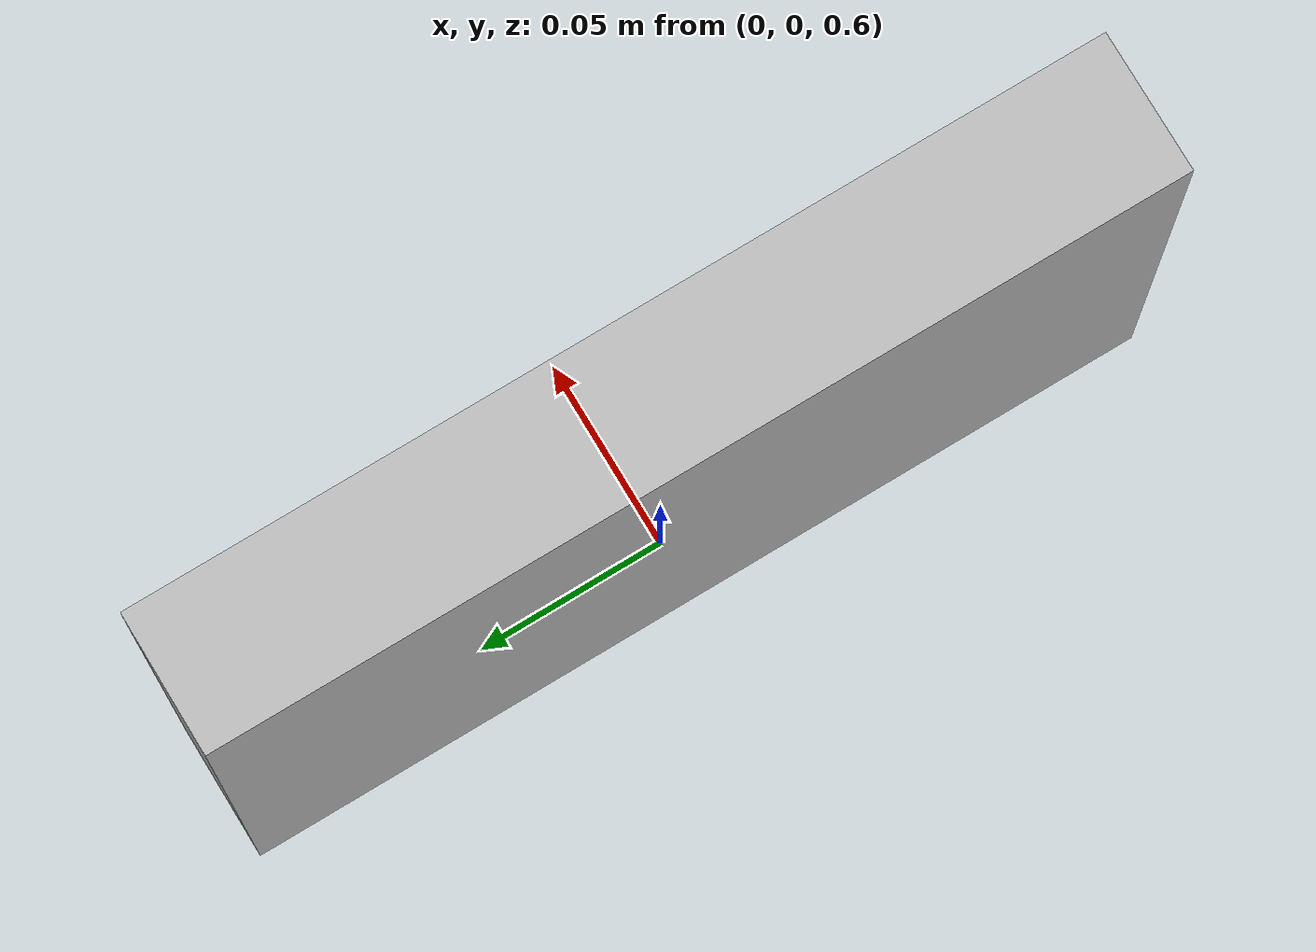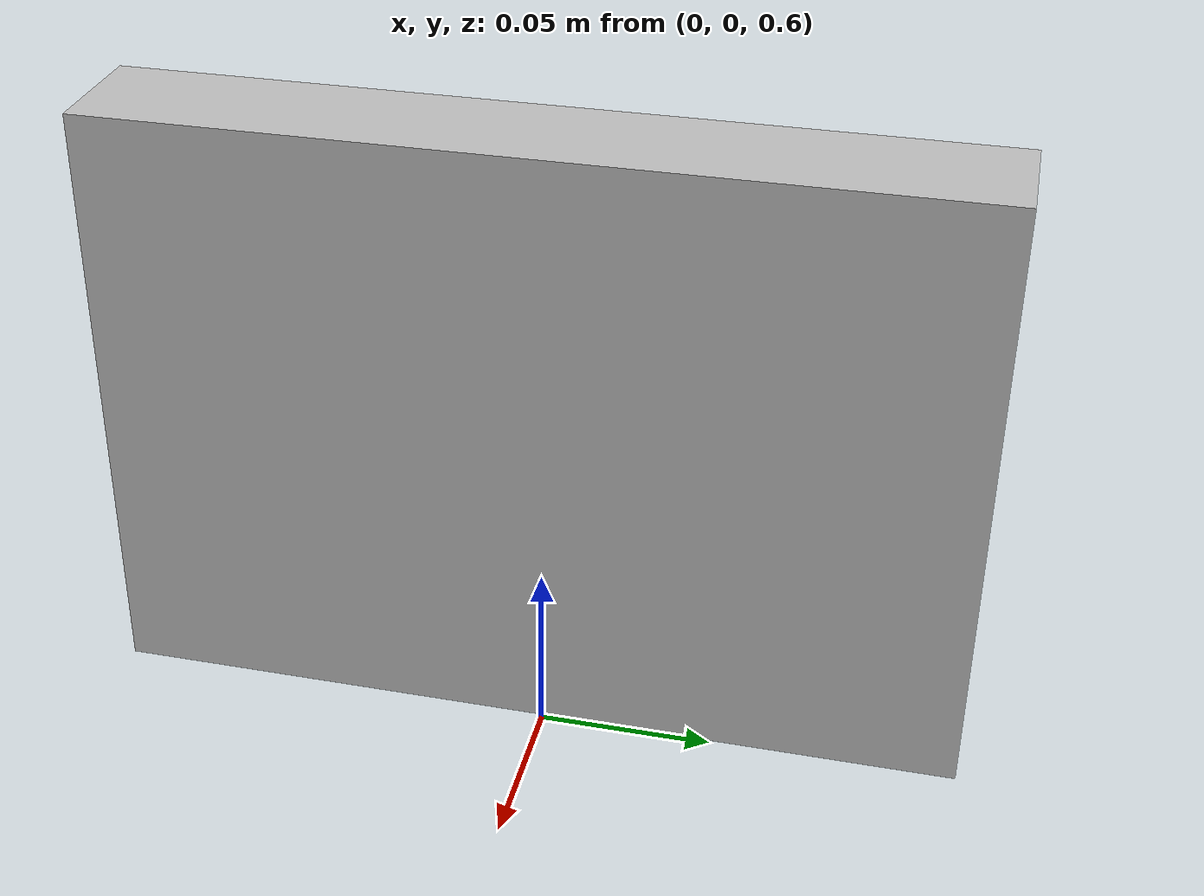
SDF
<sdf version="1.3">
<model name="dlink">
  <pose>0 0 0.70 -1.57 0.0 1.57</pose>
  <static>false</static>
    <link name="link">
      <inertial>
        <mass>1.0</mass>
        <inertia>
          <ixx>1.0</ixx>
          <ixy>0.0</ixy>
          <ixz>0.0</ixz>
          <iyy>1.0</iyy>
          <iyz>0.0</iyz>
          <izz>1.0</izz>
        </inertia>
      </inertial>
      <collision name="collision">
        <geometry>
          <box>
            <size>0.24 0.169 0.035</size>
          </box>
        </geometry>
      </collision>
      <visual name="visual">
        <geometry>
          <box>
            <size>0.24 0.169 0.035</size>
          </box>
        </geometry>
	<material>
          <script>
            <uri>model://dlink/materials/scripts</uri>
            <uri>model://dlink/materials/textures</uri>
            <name>Dlink/Diffuse</name>
          </script>
        </material>

      </visual>
    </link>
  </model>
</sdf>
